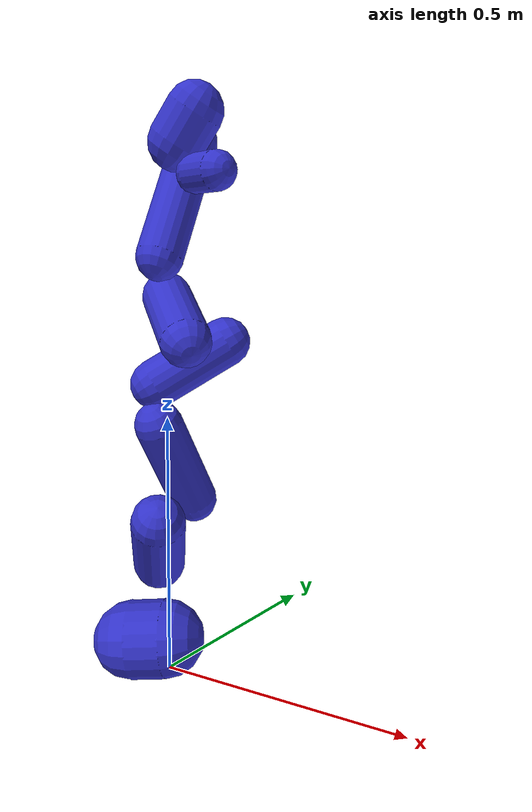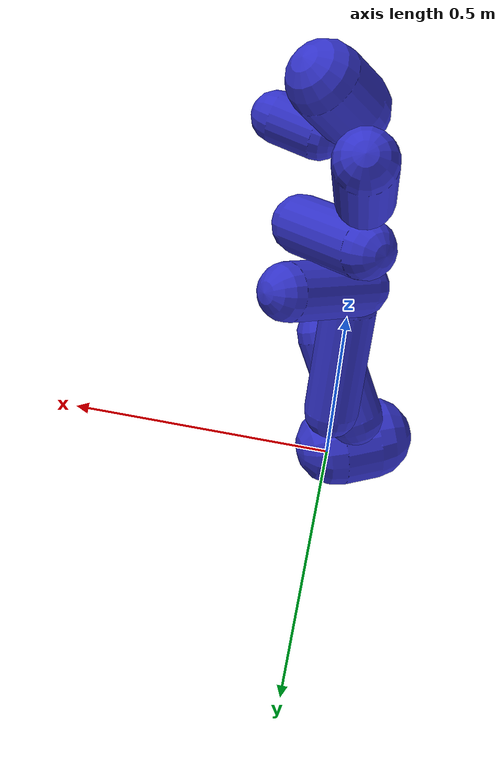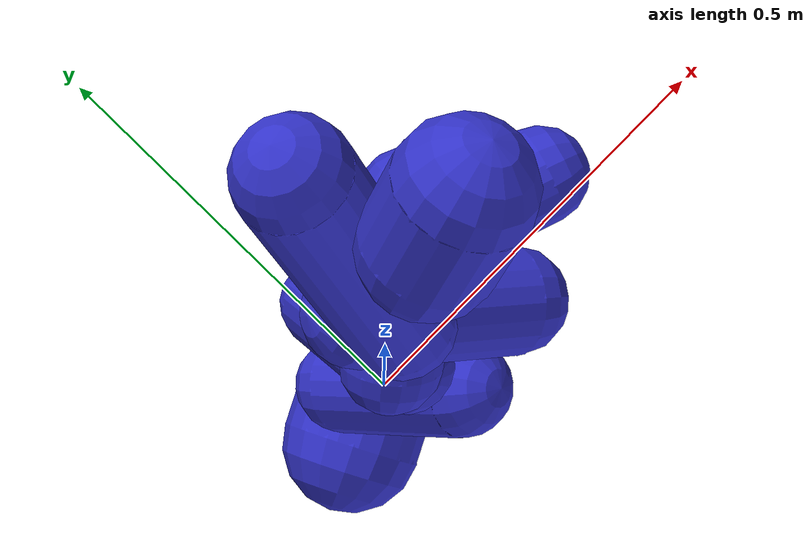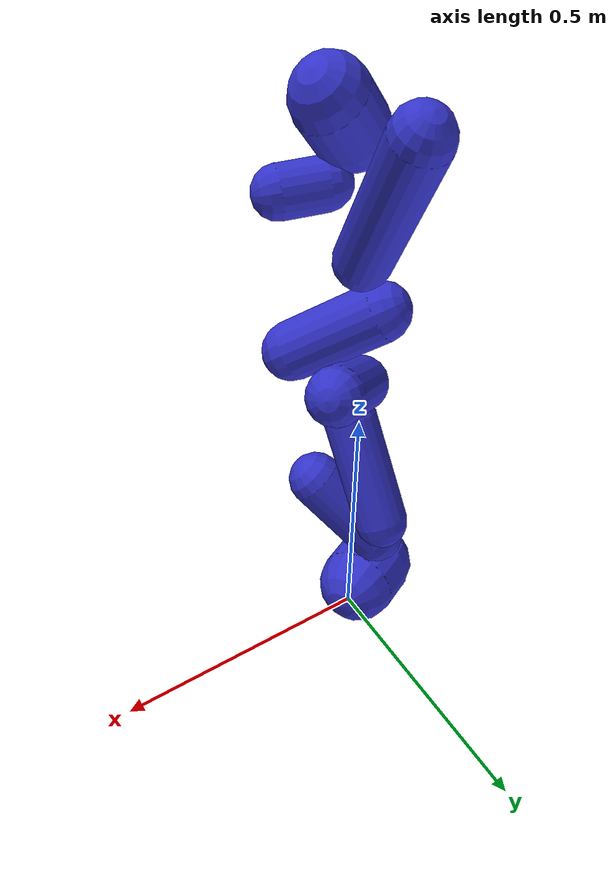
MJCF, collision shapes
<mujoco model="panda">
  <compiler angle="radian"/>
  <actuator>
    <motor ctrllimited="true" ctrlrange="-80.0 80.0" joint="joint1" name="torq_j1"/>
    <motor ctrllimited="true" ctrlrange="-80.0 80.0" joint="joint2" name="torq_j2"/>
    <motor ctrllimited="true" ctrlrange="-80.0 80.0" joint="joint3" name="torq_j3"/>
    <motor ctrllimited="true" ctrlrange="-80.0 80.0" joint="joint4" name="torq_j4"/>
    <motor ctrllimited="true" ctrlrange="-80.0 80.0" joint="joint5" name="torq_j5"/>
    <motor ctrllimited="true" ctrlrange="-12.0 12.0" joint="joint6" name="torq_j6"/>
    <motor ctrllimited="true" ctrlrange="-12.0 12.0" joint="joint7" name="torq_j7"/>
  </actuator>
  <asset>
    <mesh name="link0" file="meshes/link0.stl"/>
    <mesh name="link1" file="meshes/link1.stl"/>
    <mesh name="link2" file="meshes/link2.stl"/>
    <mesh name="link3" file="meshes/link3.stl"/>
    <mesh name="link4" file="meshes/link4.stl"/>
    <mesh name="link5" file="meshes/link5.stl"/>
    <mesh name="link6" file="meshes/link6.stl"/>
    <mesh name="link7" file="meshes/link7.stl"/>
    <material name="Face636_001" specular="0.5" shininess="0.45" rgba="0.901961 0.921569 0.929412 1.000000"/>
    <material name="Part__Feature017_001" specular="0.5" shininess="0.45" rgba="1.000000 1.000000 1.000000 1.000000"/>
    <material name="Part__Feature018_001" specular="0.5" shininess="0.45" rgba="1.000000 1.000000 1.000000 1.000000"/>
    <material name="Part__Feature019_001" specular="0.5" shininess="0.45" rgba="1.000000 1.000000 1.000000 1.000000"/>
    <material name="Part__Feature022_001" specular="0.5" shininess="0.45" rgba="0.901961 0.921569 0.929412 1.000000"/>
    <material name="Part__Feature023_001" specular="0.5" shininess="0.45" rgba="0.250980 0.250980 0.250980 1.000000"/>
    <material name="Shell001_001" specular="0.5" shininess="0.45" rgba="0.250980 0.250980 0.250980 1.000000"/>
    <material name="Shell002_001" specular="0.5" shininess="0.45" rgba="0.901961 0.921569 0.929412 1.000000"/>
    <material name="Shell003_001" specular="0.5" shininess="0.45" rgba="0.901961 0.921569 0.929412 1.000000"/>
    <material name="Shell009_001" specular="0.5" shininess="0.45" rgba="0.250980 0.250980 0.250980 1.000000"/>
    <material name="Shell010_001" specular="0.5" shininess="0.45" rgba="0.901961 0.921569 0.929412 1.000000"/>
    <material name="Shell_001" specular="0.5" shininess="0.45" rgba="0.250980 0.250980 0.250980 1.000000"/>
    <mesh name="link0_vis_0" file="obj_meshes/link0_vis/link0_vis_0.obj"/>
    <mesh name="link0_vis_1" file="obj_meshes/link0_vis/link0_vis_1.obj"/>
    <mesh name="link0_vis_2" file="obj_meshes/link0_vis/link0_vis_2.obj"/>
    <mesh name="link0_vis_3" file="obj_meshes/link0_vis/link0_vis_3.obj"/>
    <mesh name="link0_vis_4" file="obj_meshes/link0_vis/link0_vis_4.obj"/>
    <mesh name="link0_vis_5" file="obj_meshes/link0_vis/link0_vis_5.obj"/>
    <mesh name="link0_vis_6" file="obj_meshes/link0_vis/link0_vis_6.obj"/>
    <mesh name="link0_vis_7" file="obj_meshes/link0_vis/link0_vis_7.obj"/>
    <mesh name="link0_vis_8" file="obj_meshes/link0_vis/link0_vis_8.obj"/>
    <mesh name="link0_vis_9" file="obj_meshes/link0_vis/link0_vis_9.obj"/>
    <mesh name="link0_vis_10" file="obj_meshes/link0_vis/link0_vis_10.obj"/>
    <mesh name="link0_vis_11" file="obj_meshes/link0_vis/link0_vis_11.obj"/>
    <material name="Part__Feature_001" specular="0.5" shininess="0.45" rgba="1.000000 1.000000 1.000000 1.000000"/>
    <mesh name="link1_vis" file="obj_meshes/link1_vis/link1_vis.obj"/>
    <material name="Part__Feature024" specular="0.5" shininess="0.45" rgba="1.000000 1.000000 1.000000 1.000000"/>
    <mesh name="link2_vis" file="obj_meshes/link2_vis/link2_vis.obj"/>
    <material name="Part__Feature001_010_001_002" specular="0.5" shininess="0.45" rgba="1.000000 1.000000 1.000000 1.000000"/>
    <material name="Part__Feature002_007_001_002" specular="0.5" shininess="0.45" rgba="1.000000 1.000000 1.000000 1.000000"/>
    <material name="Part__Feature003_004_001_002" specular="0.5" shininess="0.45" rgba="1.000000 1.000000 1.000000 1.000000"/>
    <material name="Part__Feature_001_001_001_002" specular="0.5" shininess="0.45" rgba="0.250980 0.250980 0.250980 1.000000"/>
    <mesh name="link3_vis_0" file="obj_meshes/link3_vis/link3_vis_0.obj"/>
    <mesh name="link3_vis_1" file="obj_meshes/link3_vis/link3_vis_1.obj"/>
    <mesh name="link3_vis_2" file="obj_meshes/link3_vis/link3_vis_2.obj"/>
    <mesh name="link3_vis_3" file="obj_meshes/link3_vis/link3_vis_3.obj"/>
    <material name="Part__Feature001_001_003_001" specular="0.5" shininess="0.45" rgba="1.000000 1.000000 1.000000 1.000000"/>
    <material name="Part__Feature002_001_003_001" specular="0.5" shininess="0.45" rgba="0.250980 0.250980 0.250980 1.000000"/>
    <material name="Part__Feature003_001_003_001" specular="0.5" shininess="0.45" rgba="1.000000 1.000000 1.000000 1.000000"/>
    <material name="Part__Feature_002_003_001" specular="0.5" shininess="0.45" rgba="1.000000 1.000000 1.000000 1.000000"/>
    <mesh name="link4_vis_0" file="obj_meshes/link4_vis/link4_vis_0.obj"/>
    <mesh name="link4_vis_1" file="obj_meshes/link4_vis/link4_vis_1.obj"/>
    <mesh name="link4_vis_2" file="obj_meshes/link4_vis/link4_vis_2.obj"/>
    <mesh name="link4_vis_3" file="obj_meshes/link4_vis/link4_vis_3.obj"/>
    <material name="Part__Feature_002_004_003" specular="0.5" shininess="0.45" rgba="1.000000 1.000000 1.000000 1.000000"/>
    <material name="Shell001_001_001_003" specular="0.5" shininess="0.45" rgba="0.250000 0.250000 0.250000 1.000000"/>
    <material name="Shell_001_001_003" specular="0.5" shininess="0.45" rgba="1.000000 1.000000 1.000000 1.000000"/>
    <mesh name="link5_vis_0" file="obj_meshes/link5_vis/link5_vis_0.obj"/>
    <mesh name="link5_vis_1" file="obj_meshes/link5_vis/link5_vis_1.obj"/>
    <mesh name="link5_vis_2" file="obj_meshes/link5_vis/link5_vis_2.obj"/>
    <material name="Face064_002_001_002_001" specular="0.5" shininess="0.45" rgba="1.000000 0.000000 0.000000 1.000000"/>
    <material name="Face065_002_001_002_001" specular="0.5" shininess="0.45" rgba="0.000000 1.000000 0.000000 1.000000"/>
    <material name="Face374_002_001_002_001" specular="0.5" shininess="0.45" rgba="1.000000 1.000000 1.000000 1.000000"/>
    <material name="Face539_002_001_002_001" specular="0.5" shininess="0.45" rgba="0.250980 0.250980 0.250980 1.000000"/>
    <material name="Part__Feature001_009_001_002_001" specular="0.5" shininess="0.45" rgba="0.250980 0.250980 0.250980 1.000000"/>
    <material name="Part__Feature002_006_001_002_001" specular="0.5" shininess="0.45" rgba="0.250980 0.250980 0.250980 1.000000"/>
    <material name="Shell002_002_001_002_001" specular="0.5" shininess="0.45" rgba="1.000000 1.000000 1.000000 1.000000"/>
    <material name="Shell003_002_001_002_001" specular="0.5" shininess="0.45" rgba="1.000000 1.000000 1.000000 1.000000"/>
    <material name="Shell004_001_001_002_001" specular="0.5" shininess="0.45" rgba="1.000000 1.000000 1.000000 1.000000"/>
    <material name="Shell005_001_001_002_001" specular="0.5" shininess="0.45" rgba="1.000000 1.000000 1.000000 1.000000"/>
    <material name="Shell006_003_002_001" specular="0.5" shininess="0.45" rgba="0.901961 0.921569 0.929412 1.000000"/>
    <material name="Shell007_002_002_001" specular="0.5" shininess="0.45" rgba="0.250000 0.250000 0.250000 1.000000"/>
    <material name="Shell011_002_002_001" specular="0.5" shininess="0.45" rgba="1.000000 1.000000 1.000000 1.000000"/>
    <material name="Shell012_002_002_001" specular="0.5" shininess="0.45" rgba="1.000000 1.000000 1.000000 1.000000"/>
    <material name="Shell_003_001_002_001" specular="0.5" shininess="0.45" rgba="0.250980 0.250980 0.250980 1.000000"/>
    <material name="Union001_001_001_002_001" specular="0.5" shininess="0.45" rgba="0.039216 0.541176 0.780392 1.000000"/>
    <material name="Union_001_001_002_001" specular="0.5" shininess="0.45" rgba="0.039216 0.541176 0.780392 1.000000"/>
    <mesh name="link6_vis_0" file="obj_meshes/link6_vis/link6_vis_0.obj"/>
    <mesh name="link6_vis_1" file="obj_meshes/link6_vis/link6_vis_1.obj"/>
    <mesh name="link6_vis_2" file="obj_meshes/link6_vis/link6_vis_2.obj"/>
    <mesh name="link6_vis_3" file="obj_meshes/link6_vis/link6_vis_3.obj"/>
    <mesh name="link6_vis_4" file="obj_meshes/link6_vis/link6_vis_4.obj"/>
    <mesh name="link6_vis_5" file="obj_meshes/link6_vis/link6_vis_5.obj"/>
    <mesh name="link6_vis_6" file="obj_meshes/link6_vis/link6_vis_6.obj"/>
    <mesh name="link6_vis_7" file="obj_meshes/link6_vis/link6_vis_7.obj"/>
    <mesh name="link6_vis_8" file="obj_meshes/link6_vis/link6_vis_8.obj"/>
    <mesh name="link6_vis_9" file="obj_meshes/link6_vis/link6_vis_9.obj"/>
    <mesh name="link6_vis_10" file="obj_meshes/link6_vis/link6_vis_10.obj"/>
    <mesh name="link6_vis_11" file="obj_meshes/link6_vis/link6_vis_11.obj"/>
    <mesh name="link6_vis_12" file="obj_meshes/link6_vis/link6_vis_12.obj"/>
    <mesh name="link6_vis_13" file="obj_meshes/link6_vis/link6_vis_13.obj"/>
    <mesh name="link6_vis_14" file="obj_meshes/link6_vis/link6_vis_14.obj"/>
    <mesh name="link6_vis_15" file="obj_meshes/link6_vis/link6_vis_15.obj"/>
    <mesh name="link6_vis_16" file="obj_meshes/link6_vis/link6_vis_16.obj"/>
    <material name="Part__Mirroring001_004_002" specular="0.5" shininess="0.45" rgba="0.250980 0.250980 0.250980 1.000000"/>
    <material name="Part__Mirroring002_004_001" specular="0.5" shininess="0.45" rgba="0.250980 0.250980 0.250980 1.000000"/>
    <material name="Part__Mirroring003_004_001" specular="0.5" shininess="0.45" rgba="0.250980 0.250980 0.250980 1.000000"/>
    <material name="Part__Mirroring004_004_002" specular="0.5" shininess="0.45" rgba="1.000000 1.000000 1.000000 1.000000"/>
    <material name="Part__Mirroring005_004_001" specular="0.5" shininess="0.45" rgba="0.250980 0.250980 0.250980 1.000000"/>
    <material name="Part__Mirroring006_004_001" specular="0.5" shininess="0.45" rgba="0.250980 0.250980 0.250980 1.000000"/>
    <material name="Part__Mirroring007_004_001" specular="0.5" shininess="0.45" rgba="0.250980 0.250980 0.250980 1.000000"/>
    <material name="Part__Mirroring_004_001" specular="0.5" shininess="0.45" rgba="0.898039 0.917647 0.929412 1.000000"/>
    <mesh name="link7_vis_0" file="obj_meshes/link7_vis/link7_vis_0.obj"/>
    <mesh name="link7_vis_1" file="obj_meshes/link7_vis/link7_vis_1.obj"/>
    <mesh name="link7_vis_2" file="obj_meshes/link7_vis/link7_vis_2.obj"/>
    <mesh name="link7_vis_3" file="obj_meshes/link7_vis/link7_vis_3.obj"/>
    <mesh name="link7_vis_4" file="obj_meshes/link7_vis/link7_vis_4.obj"/>
    <mesh name="link7_vis_5" file="obj_meshes/link7_vis/link7_vis_5.obj"/>
    <mesh name="link7_vis_6" file="obj_meshes/link7_vis/link7_vis_6.obj"/>
    <mesh name="link7_vis_7" file="obj_meshes/link7_vis/link7_vis_7.obj"/>
  </asset>
  <worldbody>
    <body name="base" pos="0 0 0">
      <camera mode="fixed" name="robotview" pos="1.0 0 0.4" quat="0.653 0.271 0.271 0.653"/>
      <inertial diaginertia="0 0 0" mass="0" pos="0 0 0"/>
      <body name="link0" pos="0 0 0">
        <site name="right_center" pos="0 0 0" size="0.01" rgba="1 0.3 0.3 1" group="2"/>
        <inertial pos="0 0 0.05" mass="4" diaginertia="0.4 0.4 0.4"/>
        <geom mesh="link0_vis_0" material="Shell010_001" type="mesh" contype="0" conaffinity="0" group="1"/>
        <geom mesh="link0_vis_1" material="Shell009_001" type="mesh" contype="0" conaffinity="0" group="1"/>
        <geom mesh="link0_vis_2" material="Shell003_001" type="mesh" contype="0" conaffinity="0" group="1"/>
        <geom mesh="link0_vis_3" material="Shell_001" type="mesh" contype="0" conaffinity="0" group="1"/>
        <geom mesh="link0_vis_4" material="Shell002_001" type="mesh" contype="0" conaffinity="0" group="1"/>
        <geom mesh="link0_vis_5" material="Shell001_001" type="mesh" contype="0" conaffinity="0" group="1"/>
        <geom mesh="link0_vis_6" material="Face636_001" type="mesh" contype="0" conaffinity="0" group="1"/>
        <geom mesh="link0_vis_7" material="Part__Feature018_001" type="mesh" contype="0" conaffinity="0" group="1"/>
        <geom mesh="link0_vis_8" material="Part__Feature019_001" type="mesh" contype="0" conaffinity="0" group="1"/>
        <geom mesh="link0_vis_9" material="Part__Feature023_001" type="mesh" contype="0" conaffinity="0" group="1"/>
        <geom mesh="link0_vis_10" material="Part__Feature022_001" type="mesh" contype="0" conaffinity="0" group="1"/>
        <geom mesh="link0_vis_11" material="Part__Feature017_001" type="mesh" contype="0" conaffinity="0" group="1"/>
        <geom type="capsule" group="0" name="link0_collision" pos="-0.045906 -0.007440 0.051196" quat="0.680215 0.326181 -0.656440 0.000000" size="0.077880 0.034114" rgba="0.2 0.2 0.8 0.5"/>
        <body name="link1" pos="0 0 0.333">
          <inertial pos="0 0 -0.07" mass="3" diaginertia="0.3 0.3 0.3"/>
          <joint name="joint1" pos="0 0 0" axis="0 0 1" limited="true" range="-2.8973 2.8973" damping="0.1"/>
          <geom material="Part__Feature_001" mesh="link1_vis" type="mesh" contype="0" conaffinity="0" group="1"/>
          <geom type="capsule" group="0" name="link1_collision" pos="-0.002260 -0.027247 -0.073937" quat="0.399636 -0.715074 -0.573551 0.000000" size="0.051364 0.083821" rgba="0.2 0.2 0.8 0.5"/>
          <body name="link2" pos="0 0 0" quat="0.707107 -0.707107 0 0">
            <inertial pos="0 -0.1 0" mass="3" diaginertia="0.3 0.3 0.3"/>
            <joint name="joint2" pos="0 0 0" axis="0 0 1" limited="true" range="-1.7628 1.7628" damping="0.1"/>
            <geom material="Part__Feature024" mesh="link2_vis" type="mesh" contype="0" conaffinity="0" group="1"/>
            <geom type="capsule" group="0" name="link2_collision" pos="-0.000008 -0.075296 0.028328" quat="0.470564 0.882366 0.000593 0.000000" size="0.046872 0.098180" rgba="0.2 0.2 0.8 0.5"/>
            <body name="link3" pos="0 -0.316 0" quat="0.707107 0.707107 0 0">
              <inertial pos="0.04 0 -0.05" mass="2" diaginertia="0.2 0.2 0.2"/>
              <joint name="joint3" pos="0 0 0" axis="0 0 1" limited="true" range="-2.8973 2.8973" damping="0.1"/>
              <geom mesh="link3_vis_0" material="Part__Feature003_004_001_002" type="mesh" contype="0" conaffinity="0" group="1"/>
              <geom mesh="link3_vis_1" material="Part__Feature002_007_001_002" type="mesh" contype="0" conaffinity="0" group="1"/>
              <geom mesh="link3_vis_2" material="Part__Feature001_010_001_002" type="mesh" contype="0" conaffinity="0" group="1"/>
              <geom mesh="link3_vis_3" material="Part__Feature_001_001_001_002" type="mesh" contype="0" conaffinity="0" group="1"/>
              <geom type="capsule" group="0" name="link3_collision" pos="0.040259 0.021475 -0.041876" quat="0.493642 0.533369 -0.686903 0.000000" size="0.047633 0.078781" rgba="0.2 0.2 0.8 0.5"/>
              <body name="link4" pos="0.0825 0 0" quat="0.707107 0.707107 0 0">
                <inertial pos="-0.04 0.05 0" mass="2" diaginertia="0.2 0.2 0.2"/>
                <joint name="joint4" pos="0 0 0" axis="0 0 1" limited="true" range="-3.0718 -0.0698" damping="0.1"/>
                <geom mesh="link4_vis_0" material="Part__Feature001_001_003_001" type="mesh" contype="0" conaffinity="0" group="1"/>
                <geom mesh="link4_vis_1" material="Part__Feature003_001_003_001" type="mesh" contype="0" conaffinity="0" group="1"/>
                <geom mesh="link4_vis_2" material="Part__Feature002_001_003_001" type="mesh" contype="0" conaffinity="0" group="1"/>
                <geom mesh="link4_vis_3" material="Part__Feature_002_003_001" type="mesh" contype="0" conaffinity="0" group="1"/>
                <geom type="capsule" group="0" name="link4_collision" pos="-0.042357 0.043139 0.021519" quat="0.491500 -0.533817 -0.688089 0.000000" size="0.047910 0.079688" rgba="0.2 0.2 0.8 0.5"/>
                <body name="link5" pos="-0.0825 0.384 0" quat="0.707107 -0.707107 0 0">
                  <inertial pos="0 0 -0.15" mass="2" diaginertia="0.2 0.2 0.2"/>
                  <joint name="joint5" pos="0 0 0" axis="0 0 1" limited="true" range="-2.8973 2.8973" damping="0.1"/>
                  <geom mesh="link5_vis_0" material="Shell001_001_001_003" type="mesh" contype="0" conaffinity="0" group="1"/>
                  <geom mesh="link5_vis_1" material="Shell_001_001_003" type="mesh" contype="0" conaffinity="0" group="1"/>
                  <geom mesh="link5_vis_2" material="Part__Feature_002_004_003" type="mesh" contype="0" conaffinity="0" group="1"/>
                  <geom type="capsule" group="0" name="link5_collision" pos="-0.000036 0.037459 -0.111048" quat="0.219772 0.975325 -0.021031 0.000000" size="0.045813 0.127463" rgba="0.2 0.2 0.8 0.5"/>
                  <body name="link6" pos="0 0 0" quat="0.707107 0.707107 0 0">
                    <inertial pos="0.06 0 0" mass="1.5" diaginertia="0.1 0.1 0.1"/>
                    <joint name="joint6" pos="0 0 0" axis="0 0 1" limited="true" range="-0.0175 3.7525" damping="0.01"/>
                    <geom mesh="link6_vis_0" material="Shell006_003_002_001" type="mesh" contype="0" conaffinity="0" group="1"/>
                    <geom mesh="link6_vis_1" material="Shell011_002_002_001" type="mesh" contype="0" conaffinity="0" group="1"/>
                    <geom mesh="link6_vis_2" material="Shell007_002_002_001" type="mesh" contype="0" conaffinity="0" group="1"/>
                    <geom mesh="link6_vis_3" material="Shell005_001_001_002_001" type="mesh" contype="0" conaffinity="0" group="1"/>
                    <geom mesh="link6_vis_4" material="Shell004_001_001_002_001" type="mesh" contype="0" conaffinity="0" group="1"/>
                    <geom mesh="link6_vis_5" material="Shell003_002_001_002_001" type="mesh" contype="0" conaffinity="0" group="1"/>
                    <geom mesh="link6_vis_6" material="Shell002_002_001_002_001" type="mesh" contype="0" conaffinity="0" group="1"/>
                    <geom mesh="link6_vis_7" material="Union001_001_001_002_001" type="mesh" contype="0" conaffinity="0" group="1"/>
                    <geom mesh="link6_vis_8" material="Union_001_001_002_001" type="mesh" contype="0" conaffinity="0" group="1"/>
                    <geom mesh="link6_vis_9" material="Face539_002_001_002_001" type="mesh" contype="0" conaffinity="0" group="1"/>
                    <geom mesh="link6_vis_10" material="Shell_003_001_002_001" type="mesh" contype="0" conaffinity="0" group="1"/>
                    <geom mesh="link6_vis_11" material="Face374_002_001_002_001" type="mesh" contype="0" conaffinity="0" group="1"/>
                    <geom mesh="link6_vis_12" material="Face065_002_001_002_001" type="mesh" contype="0" conaffinity="0" group="1"/>
                    <geom mesh="link6_vis_13" material="Face064_002_001_002_001" type="mesh" contype="0" conaffinity="0" group="1"/>
                    <geom mesh="link6_vis_14" material="Part__Feature002_006_001_002_001" type="mesh" contype="0" conaffinity="0" group="1"/>
                    <geom mesh="link6_vis_15" material="Part__Feature001_009_001_002_001" type="mesh" contype="0" conaffinity="0" group="1"/>
                    <geom mesh="link6_vis_16" material="Shell012_002_002_001" type="mesh" contype="0" conaffinity="0" group="1"/>
                    <geom type="capsule" group="0" name="link6_collision" pos="0.053170 0.008966 0.005066" quat="0.671114 -0.601582 0.433249 0.000000" size="0.053876 0.033139" rgba="0.2 0.2 0.8 0.5"/>
                    <body name="link7" pos="0.088 0 0" quat="0.707107 0.707107 0 0">
                      <inertial pos="0 0 0.08" mass="0.5" diaginertia="0.05 0.05 0.05"/>
                      <joint name="joint7" pos="0 0 0" axis="0 0 1" limited="true" range="-2.8973 2.8973" damping="0.01"/>
                      <geom mesh="link7_vis_0" material="Part__Mirroring004_004_002" type="mesh" contype="0" conaffinity="0" group="1"/>
                      <geom mesh="link7_vis_1" material="Part__Mirroring001_004_002" type="mesh" contype="0" conaffinity="0" group="1"/>
                      <geom mesh="link7_vis_2" material="Part__Mirroring007_004_001" type="mesh" contype="0" conaffinity="0" group="1"/>
                      <geom mesh="link7_vis_3" material="Part__Mirroring006_004_001" type="mesh" contype="0" conaffinity="0" group="1"/>
                      <geom mesh="link7_vis_4" material="Part__Mirroring005_004_001" type="mesh" contype="0" conaffinity="0" group="1"/>
                      <geom mesh="link7_vis_5" material="Part__Mirroring003_004_001" type="mesh" contype="0" conaffinity="0" group="1"/>
                      <geom mesh="link7_vis_6" material="Part__Mirroring002_004_001" type="mesh" contype="0" conaffinity="0" group="1"/>
                      <geom mesh="link7_vis_7" material="Part__Mirroring_004_001" type="mesh" contype="0" conaffinity="0" group="1"/>
                      <geom type="capsule" group="0" name="link7_collision" pos="0.017035 0.013198 0.079160" quat="0.728512 -0.214639 0.650538 0.000000" size="0.036687 0.032937" rgba="0.2 0.2 0.8 0.5"/>
                      <body name="right_hand" pos="0 0 0.1065" quat="0.924 0 0 -0.383">
                        <inertial pos="0 0 0" mass="0.5" diaginertia="0.05 0.05 0.05"/>
                        <camera mode="fixed" name="eye_in_hand" pos="0.05 0 0" quat="0 0.707108 0.707108 0" fovy="75"/>
                      </body>
                    </body>
                  </body>
                </body>
              </body>
            </body>
          </body>
        </body>
      </body>
    </body>
  </worldbody>
</mujoco>
